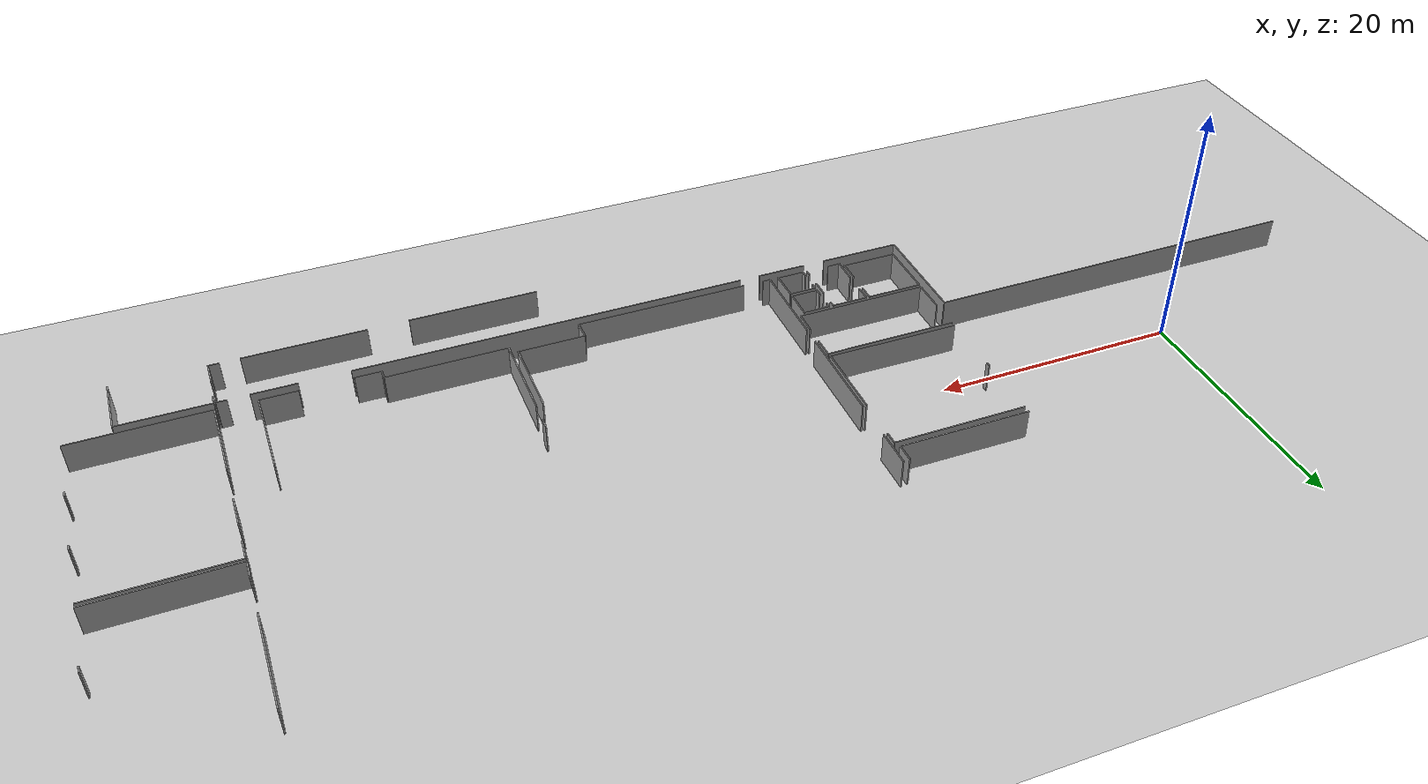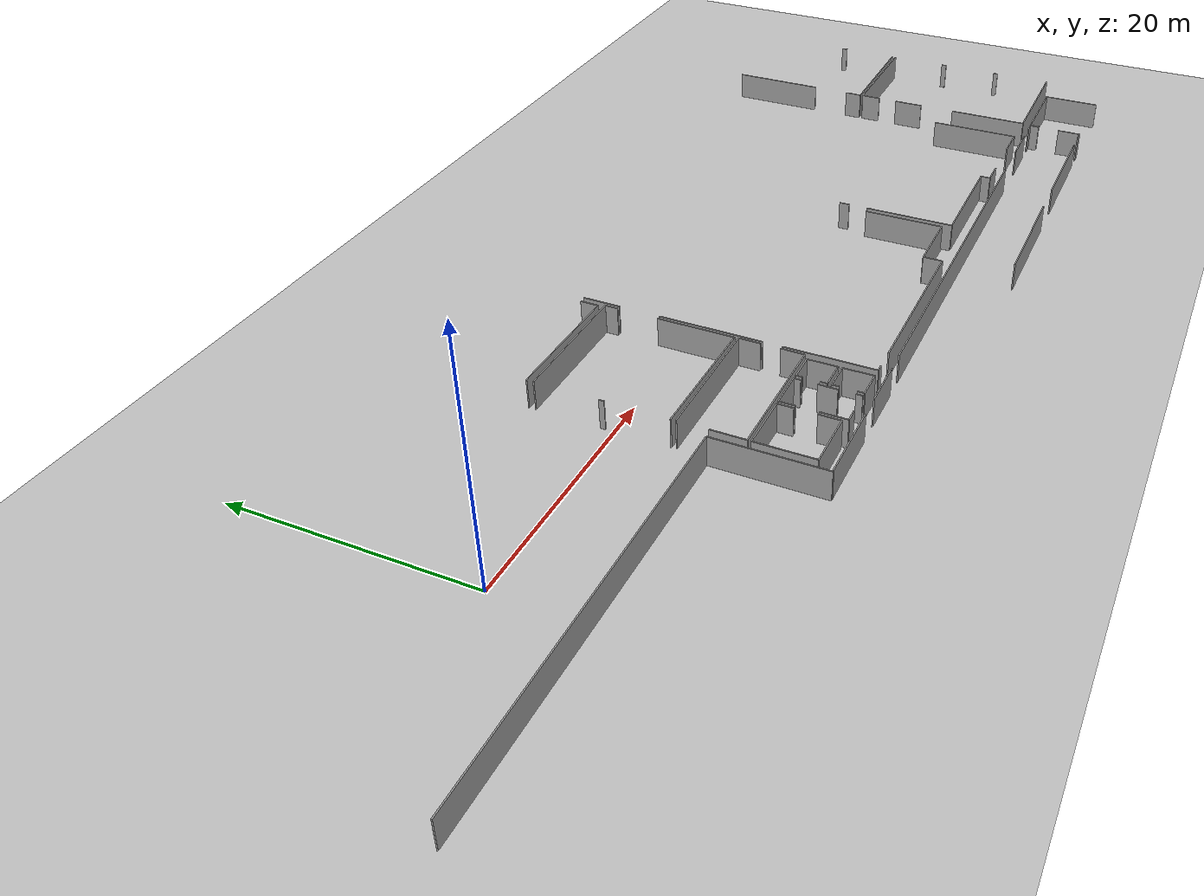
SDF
<sdf version="1.6">
 <world name="default">
  <model name="ground_plane">
   <static>1</static>
   <link name="link">
    <collision name="collision">
     <geometry><plane><normal>0 0 1</normal><size>100 100</size></plane></geometry>
     <surface><friction><ode><mu>100</mu><mu2>50</mu2></ode></friction></surface>
    </collision>
    <visual name="visual">
     <cast_shadows>0</cast_shadows>
     <geometry><plane><normal>0 0 1</normal><size>100 100</size></plane></geometry>
     <material>
      <script><uri>file://media/materials/scripts/gazebo.material</uri><name>Gazebo/Grey</name></script>
     </material>
    </visual>
   </link>
  </model>
  <model name="0510045904_A_40_1_102">
   <static>1</static>
   <link name="Wall_164">
    <collision name="Wall_164_Collision">
     <geometry><box><size>9.07131158988 0.1 2.5</size></box></geometry>
     <pose>4.53565579494 0 1.25 0 0 0</pose>
    </collision>
    <visual name="Wall_164_Visual">
     <pose>4.53565579494 0 1.25 0 0 0</pose>
     <geometry><box><size>9.07131158988 0.1 2.5</size></box></geometry>
     <material>
      <script><uri>file://media/materials/scripts/gazebo.material</uri><name>Gazebo/Grey</name></script>
      <ambient>1 1 1 1</ambient>
     </material>
    </visual>
    <pose>100.589333096 -78.9183287417 0 0 0 1.57079632679</pose>
   </link>
   <link name="Wall_165">
    <collision name="Wall_165_Collision">
     <geometry><box><size>32.435156855 0.1 2.5</size></box></geometry>
     <pose>16.2175784275 0 1.25 0 0 0</pose>
    </collision>
    <visual name="Wall_165_Visual">
     <pose>16.2175784275 0 1.25 0 0 0</pose>
     <geometry><box><size>32.435156855 0.1 2.5</size></box></geometry>
     <material>
      <script><uri>file://media/materials/scripts/gazebo.material</uri><name>Gazebo/Grey</name></script>
      <ambient>1 1 1 1</ambient>
     </material>
    </visual>
    <pose>100.589333096 -69.8470171519 0 0 0 3.14159265359</pose>
   </link>
   <link name="Wall_167">
    <collision name="Wall_167_Collision">
     <geometry><box><size>6.50297713509 0.1 2.5</size></box></geometry>
     <pose>3.25148856755 0 1.25 0 0 0</pose>
    </collision>
    <visual name="Wall_167_Visual">
     <pose>3.25148856755 0 1.25 0 0 0</pose>
     <geometry><box><size>6.50297713509 0.1 2.5</size></box></geometry>
     <material>
      <script><uri>file://media/materials/scripts/gazebo.material</uri><name>Gazebo/Grey</name></script>
      <ambient>1 1 1 1</ambient>
     </material>
    </visual>
    <pose>100.705371539 -78.8878591288 0 0 0 0.0</pose>
   </link>
   <link name="Wall_168">
    <collision name="Wall_168_Collision">
     <geometry><box><size>4.00675409753 0.1 2.5</size></box></geometry>
     <pose>2.00337704876 0 1.25 0 0 0</pose>
    </collision>
    <visual name="Wall_168_Visual">
     <pose>2.00337704876 0 1.25 0 0 0</pose>
     <geometry><box><size>4.00675409753 0.1 2.5</size></box></geometry>
     <material>
      <script><uri>file://media/materials/scripts/gazebo.material</uri><name>Gazebo/Grey</name></script>
      <ambient>1 1 1 1</ambient>
     </material>
    </visual>
    <pose>109.069788109 -78.8878591288 0 0 0 0.0</pose>
   </link>
   <link name="Wall_169">
    <collision name="Wall_169_Collision">
     <geometry><box><size>32.1962243071 0.1 2.5</size></box></geometry>
     <pose>16.0981121536 0 1.25 0 0 0</pose>
    </collision>
    <visual name="Wall_169_Visual">
     <pose>16.0981121536 0 1.25 0 0 0</pose>
     <geometry><box><size>32.1962243071 0.1 2.5</size></box></geometry>
     <material>
      <script><uri>file://media/materials/scripts/gazebo.material</uri><name>Gazebo/Grey</name></script>
      <ambient>1 1 1 1</ambient>
     </material>
    </visual>
    <pose>114.811278835 -78.8878591288 0 0 0 0.0</pose>
   </link>
   <link name="Wall_170">
    <collision name="Wall_170_Collision">
     <geometry><box><size>3.59312910229 0.1 2.5</size></box></geometry>
     <pose>1.79656455114 0 1.25 0 0 0</pose>
    </collision>
    <visual name="Wall_170_Visual">
     <pose>1.79656455114 0 1.25 0 0 0</pose>
     <geometry><box><size>3.59312910229 0.1 2.5</size></box></geometry>
     <material>
      <script><uri>file://media/materials/scripts/gazebo.material</uri><name>Gazebo/Grey</name></script>
      <ambient>1 1 1 1</ambient>
     </material>
    </visual>
    <pose>151.02974596 -78.8878591288 0 0 0 0.0</pose>
   </link>
   <link name="Wall_171">
    <collision name="Wall_171_Collision">
     <geometry><box><size>0.82775781736 0.1 2.5</size></box></geometry>
     <pose>0.41387890868 0 1.25 0 0 0</pose>
    </collision>
    <visual name="Wall_171_Visual">
     <pose>0.41387890868 0 1.25 0 0 0</pose>
     <geometry><box><size>0.82775781736 0.1 2.5</size></box></geometry>
     <material>
      <script><uri>file://media/materials/scripts/gazebo.material</uri><name>Gazebo/Grey</name></script>
      <ambient>1 1 1 1</ambient>
     </material>
    </visual>
    <pose>156.302004647 -78.8878591288 0 0 0 0.0</pose>
   </link>
   <link name="Wall_172">
    <collision name="Wall_172_Collision">
     <geometry><box><size>0.794749070042 0.1 2.5</size></box></geometry>
     <pose>0.397374535021 0 1.25 0 0 0</pose>
    </collision>
    <visual name="Wall_172_Visual">
     <pose>0.397374535021 0 1.25 0 0 0</pose>
     <geometry><box><size>0.794749070042 0.1 2.5</size></box></geometry>
     <material>
      <script><uri>file://media/materials/scripts/gazebo.material</uri><name>Gazebo/Grey</name></script>
      <ambient>1 1 1 1</ambient>
     </material>
    </visual>
    <pose>157.129762464 -78.8878591288 0 0 0 -1.57079632679</pose>
   </link>
   <link name="Wall_173">
    <collision name="Wall_173_Collision">
     <geometry><box><size>2.03130752726 0.1 2.5</size></box></geometry>
     <pose>1.01565376363 0 1.25 0 0 0</pose>
    </collision>
    <visual name="Wall_173_Visual">
     <pose>1.01565376363 0 1.25 0 0 0</pose>
     <geometry><box><size>2.03130752726 0.1 2.5</size></box></geometry>
     <material>
      <script><uri>file://media/materials/scripts/gazebo.material</uri><name>Gazebo/Grey</name></script>
      <ambient>1 1 1 1</ambient>
     </material>
    </visual>
    <pose>157.129762464 -81.6057486003 0 0 0 -1.57079632679</pose>
   </link>
   <link name="Wall_174">
    <collision name="Wall_174_Collision">
     <geometry><box><size>0.854418728655 0.1 2.5</size></box></geometry>
     <pose>0.427209364328 0 1.25 0 0 0</pose>
    </collision>
    <visual name="Wall_174_Visual">
     <pose>0.427209364328 0 1.25 0 0 0</pose>
     <geometry><box><size>0.854418728655 0.1 2.5</size></box></geometry>
     <material>
      <script><uri>file://media/materials/scripts/gazebo.material</uri><name>Gazebo/Grey</name></script>
      <ambient>1 1 1 1</ambient>
     </material>
    </visual>
    <pose>157.129762464 -83.6370561276 0 0 0 3.14159265359</pose>
   </link>
   <link name="Wall_175">
    <collision name="Wall_175_Collision">
     <geometry><box><size>9.8876433024 0.1 2.5</size></box></geometry>
     <pose>4.9438216512 0 1.25 0 0 0</pose>
    </collision>
    <visual name="Wall_175_Visual">
     <pose>4.9438216512 0 1.25 0 0 0</pose>
     <geometry><box><size>9.8876433024 0.1 2.5</size></box></geometry>
     <material>
      <script><uri>file://media/materials/scripts/gazebo.material</uri><name>Gazebo/Grey</name></script>
      <ambient>1 1 1 1</ambient>
     </material>
    </visual>
    <pose>154.695240393 -83.6370561276 0 0 0 3.14159265359</pose>
   </link>
   <link name="Wall_176">
    <collision name="Wall_176_Collision">
     <geometry><box><size>10.540454759 0.1 2.5</size></box></geometry>
     <pose>5.27022737949 0 1.25 0 0 0</pose>
    </collision>
    <visual name="Wall_176_Visual">
     <pose>5.27022737949 0 1.25 0 0 0</pose>
     <geometry><box><size>10.540454759 0.1 2.5</size></box></geometry>
     <material>
      <script><uri>file://media/materials/scripts/gazebo.material</uri><name>Gazebo/Grey</name></script>
      <ambient>1 1 1 1</ambient>
     </material>
    </visual>
    <pose>141.466857948 -83.6370561276 0 0 0 3.14159265359</pose>
   </link>
   <link name="Wall_181">
    <collision name="Wall_181_Collision">
     <geometry><box><size>2.17756166923 0.1 2.5</size></box></geometry>
     <pose>1.08878083461 0 1.25 0 0 0</pose>
    </collision>
    <visual name="Wall_181_Visual">
     <pose>1.08878083461 0 1.25 0 0 0</pose>
     <geometry><box><size>2.17756166923 0.1 2.5</size></box></geometry>
     <material>
      <script><uri>file://media/materials/scripts/gazebo.material</uri><name>Gazebo/Grey</name></script>
      <ambient>1 1 1 1</ambient>
     </material>
    </visual>
    <pose>106.163240951 -78.0593395711 0 0 0 1.57079632679</pose>
   </link>
   <link name="Wall_182">
    <collision name="Wall_182_Collision">
     <geometry><box><size>1.28759505884 0.1 2.5</size></box></geometry>
     <pose>0.643797529422 0 1.25 0 0 0</pose>
    </collision>
    <visual name="Wall_182_Visual">
     <pose>0.643797529422 0 1.25 0 0 0</pose>
     <geometry><box><size>1.28759505884 0.1 2.5</size></box></geometry>
     <material>
      <script><uri>file://media/materials/scripts/gazebo.material</uri><name>Gazebo/Grey</name></script>
      <ambient>1 1 1 1</ambient>
     </material>
    </visual>
    <pose>106.163240951 -74.1239351505 0 0 0 1.57079632679</pose>
   </link>
   <link name="Wall_183">
    <collision name="Wall_183_Collision">
     <geometry><box><size>2.97053334518 0.1 2.5</size></box></geometry>
     <pose>1.48526667259 0 1.25 0 0 0</pose>
    </collision>
    <visual name="Wall_183_Visual">
     <pose>1.48526667259 0 1.25 0 0 0</pose>
     <geometry><box><size>2.97053334518 0.1 2.5</size></box></geometry>
     <material>
      <script><uri>file://media/materials/scripts/gazebo.material</uri><name>Gazebo/Grey</name></script>
      <ambient>1 1 1 1</ambient>
     </material>
    </visual>
    <pose>106.163240951 -72.8363400917 0 0 0 0.0</pose>
   </link>
   <link name="Wall_184">
    <collision name="Wall_184_Collision">
     <geometry><box><size>0.54261302322 0.1 2.5</size></box></geometry>
     <pose>0.27130651161 0 1.25 0 0 0</pose>
    </collision>
    <visual name="Wall_184_Visual">
     <pose>0.27130651161 0 1.25 0 0 0</pose>
     <geometry><box><size>0.54261302322 0.1 2.5</size></box></geometry>
     <material>
      <script><uri>file://media/materials/scripts/gazebo.material</uri><name>Gazebo/Grey</name></script>
      <ambient>1 1 1 1</ambient>
     </material>
    </visual>
    <pose>109.133774296 -72.8363400917 0 0 0 -1.57079632679</pose>
   </link>
   <link name="Wall_185">
    <collision name="Wall_185_Collision">
     <geometry><box><size>1.55268069115 0.1 2.5</size></box></geometry>
     <pose>0.776340345576 0 1.25 0 0 0</pose>
    </collision>
    <visual name="Wall_185_Visual">
     <pose>0.776340345576 0 1.25 0 0 0</pose>
     <geometry><box><size>1.55268069115 0.1 2.5</size></box></geometry>
     <material>
      <script><uri>file://media/materials/scripts/gazebo.material</uri><name>Gazebo/Grey</name></script>
      <ambient>1 1 1 1</ambient>
     </material>
    </visual>
    <pose>109.133774296 -74.6492820597 0 0 0 -1.57079632679</pose>
   </link>
   <link name="Wall_186">
    <collision name="Wall_186_Collision">
     <geometry><box><size>0.508080795257 0.1 2.5</size></box></geometry>
     <pose>0.254040397628 0 1.25 0 0 0</pose>
    </collision>
    <visual name="Wall_186_Visual">
     <pose>0.254040397628 0 1.25 0 0 0</pose>
     <geometry><box><size>0.508080795257 0.1 2.5</size></box></geometry>
     <material>
      <script><uri>file://media/materials/scripts/gazebo.material</uri><name>Gazebo/Grey</name></script>
      <ambient>1 1 1 1</ambient>
     </material>
    </visual>
    <pose>109.133774296 -77.5367857098 0 0 0 -1.57079632679</pose>
   </link>
   <link name="Wall_187">
    <collision name="Wall_187_Collision">
     <geometry><box><size>1.03251349247 0.1 2.5</size></box></geometry>
     <pose>0.516256746237 0 1.25 0 0 0</pose>
    </collision>
    <visual name="Wall_187_Visual">
     <pose>0.516256746237 0 1.25 0 0 0</pose>
     <geometry><box><size>1.03251349247 0.1 2.5</size></box></geometry>
     <material>
      <script><uri>file://media/materials/scripts/gazebo.material</uri><name>Gazebo/Grey</name></script>
      <ambient>1 1 1 1</ambient>
     </material>
    </visual>
    <pose>107.195653002 -78.044866505 0 0 0 -3.12757488023</pose>
   </link>
   <link name="Wall_188">
    <collision name="Wall_188_Collision">
     <geometry><box><size>2.22174260794 0.1 2.5</size></box></geometry>
     <pose>1.11087130397 0 1.25 0 0 0</pose>
    </collision>
    <visual name="Wall_188_Visual">
     <pose>1.11087130397 0 1.25 0 0 0</pose>
     <geometry><box><size>2.22174260794 0.1 2.5</size></box></geometry>
     <material>
      <script><uri>file://media/materials/scripts/gazebo.material</uri><name>Gazebo/Grey</name></script>
      <ambient>1 1 1 1</ambient>
     </material>
    </visual>
    <pose>111.708964414 -75.2726395572 0 0 0 3.14159265359</pose>
   </link>
   <link name="Wall_189">
    <collision name="Wall_189_Collision">
     <geometry><box><size>0.580700039357 0.1 2.5</size></box></geometry>
     <pose>0.290350019678 0 1.25 0 0 0</pose>
    </collision>
    <visual name="Wall_189_Visual">
     <pose>0.290350019678 0 1.25 0 0 0</pose>
     <geometry><box><size>0.580700039357 0.1 2.5</size></box></geometry>
     <material>
      <script><uri>file://media/materials/scripts/gazebo.material</uri><name>Gazebo/Grey</name></script>
      <ambient>1 1 1 1</ambient>
     </material>
    </visual>
    <pose>109.487221806 -75.2726395572 0 0 0 1.57079632679</pose>
   </link>
   <link name="Wall_190">
    <collision name="Wall_190_Collision">
     <geometry><box><size>0.50604948773 0.1 2.5</size></box></geometry>
     <pose>0.253024743865 0 1.25 0 0 0</pose>
    </collision>
    <visual name="Wall_190_Visual">
     <pose>0.253024743865 0 1.25 0 0 0</pose>
     <geometry><box><size>0.50604948773 0.1 2.5</size></box></geometry>
     <material>
      <script><uri>file://media/materials/scripts/gazebo.material</uri><name>Gazebo/Grey</name></script>
      <ambient>1 1 1 1</ambient>
     </material>
    </visual>
    <pose>109.487221806 -73.3609252606 0 0 0 1.57079632679</pose>
   </link>
   <link name="Wall_191">
    <collision name="Wall_191_Collision">
     <geometry><box><size>2.22098086762 0.1 2.5</size></box></geometry>
     <pose>1.11049043381 0 1.25 0 0 0</pose>
    </collision>
    <visual name="Wall_191_Visual">
     <pose>1.11049043381 0 1.25 0 0 0</pose>
     <geometry><box><size>2.22098086762 0.1 2.5</size></box></geometry>
     <material>
      <script><uri>file://media/materials/scripts/gazebo.material</uri><name>Gazebo/Grey</name></script>
      <ambient>1 1 1 1</ambient>
     </material>
    </visual>
    <pose>109.487221806 -72.8548757728 0 0 0 0.0</pose>
   </link>
   <link name="Wall_192">
    <collision name="Wall_192_Collision">
     <geometry><box><size>2.41776390432 0.1 2.5</size></box></geometry>
     <pose>1.20888195216 0 1.25 0 0 0</pose>
    </collision>
    <visual name="Wall_192_Visual">
     <pose>1.20888195216 0 1.25 0 0 0</pose>
     <geometry><box><size>2.41776390432 0.1 2.5</size></box></geometry>
     <material>
      <script><uri>file://media/materials/scripts/gazebo.material</uri><name>Gazebo/Grey</name></script>
      <ambient>1 1 1 1</ambient>
     </material>
    </visual>
    <pose>111.708202674 -72.8548757728 0 0 0 -1.57048126694</pose>
   </link>
   <link name="Wall_193">
    <collision name="Wall_193_Collision">
     <geometry><box><size>2.26135310473 0.1 2.5</size></box></geometry>
     <pose>1.13067655236 0 1.25 0 0 0</pose>
    </collision>
    <visual name="Wall_193_Visual">
     <pose>1.13067655236 0 1.25 0 0 0</pose>
     <geometry><box><size>2.26135310473 0.1 2.5</size></box></geometry>
     <material>
      <script><uri>file://media/materials/scripts/gazebo.material</uri><name>Gazebo/Grey</name></script>
      <ambient>1 1 1 1</ambient>
     </material>
    </visual>
    <pose>111.742480988 -78.062132619 0 0 0 3.14159265359</pose>
   </link>
   <link name="Wall_194">
    <collision name="Wall_194_Collision">
     <geometry><box><size>0.538042581284 0.1 2.5</size></box></geometry>
     <pose>0.269021290642 0 1.25 0 0 0</pose>
    </collision>
    <visual name="Wall_194_Visual">
     <pose>0.269021290642 0 1.25 0 0 0</pose>
     <geometry><box><size>0.538042581284 0.1 2.5</size></box></geometry>
     <material>
      <script><uri>file://media/materials/scripts/gazebo.material</uri><name>Gazebo/Grey</name></script>
      <ambient>1 1 1 1</ambient>
     </material>
    </visual>
    <pose>109.481127884 -78.062132619 0 0 0 1.57079632679</pose>
   </link>
   <link name="Wall_195">
    <collision name="Wall_195_Collision">
     <geometry><box><size>0.542866936661 0.1 2.5</size></box></geometry>
     <pose>0.271433468331 0 1.25 0 0 0</pose>
    </collision>
    <visual name="Wall_195_Visual">
     <pose>0.271433468331 0 1.25 0 0 0</pose>
     <geometry><box><size>0.542866936661 0.1 2.5</size></box></geometry>
     <material>
      <script><uri>file://media/materials/scripts/gazebo.material</uri><name>Gazebo/Grey</name></script>
      <ambient>1 1 1 1</ambient>
     </material>
    </visual>
    <pose>109.481127884 -76.1438165729 0 0 0 1.57079632679</pose>
   </link>
   <link name="Wall_196">
    <collision name="Wall_196_Collision">
     <geometry><box><size>2.22783653053 0.1 2.5</size></box></geometry>
     <pose>1.11391826526 0 1.25 0 0 0</pose>
    </collision>
    <visual name="Wall_196_Visual">
     <pose>1.11391826526 0 1.25 0 0 0</pose>
     <geometry><box><size>2.22783653053 0.1 2.5</size></box></geometry>
     <material>
      <script><uri>file://media/materials/scripts/gazebo.material</uri><name>Gazebo/Grey</name></script>
      <ambient>1 1 1 1</ambient>
     </material>
    </visual>
    <pose>109.481127884 -75.6009496363 0 0 0 0.0</pose>
   </link>
   <link name="Wall_197">
    <collision name="Wall_197_Collision">
     <geometry><box><size>2.46141118775 0.1 2.5</size></box></geometry>
     <pose>1.23070559388 0 1.25 0 0 0</pose>
    </collision>
    <visual name="Wall_197_Visual">
     <pose>1.23070559388 0 1.25 0 0 0</pose>
     <geometry><box><size>2.46141118775 0.1 2.5</size></box></geometry>
     <material>
      <script><uri>file://media/materials/scripts/gazebo.material</uri><name>Gazebo/Grey</name></script>
      <ambient>1 1 1 1</ambient>
     </material>
    </visual>
    <pose>111.708964414 -75.6009496363 0 0 0 -1.55717909363</pose>
   </link>
   <link name="Wall_198">
    <collision name="Wall_198_Collision">
     <geometry><box><size>1.76749146216 0.1 2.5</size></box></geometry>
     <pose>0.88374573108 0 1.25 0 0 0</pose>
    </collision>
    <visual name="Wall_198_Visual">
     <pose>0.88374573108 0 1.25 0 0 0</pose>
     <geometry><box><size>1.76749146216 0.1 2.5</size></box></geometry>
     <material>
      <script><uri>file://media/materials/scripts/gazebo.material</uri><name>Gazebo/Grey</name></script>
      <ambient>1 1 1 1</ambient>
     </material>
    </visual>
    <pose>105.880635291 -77.6449528356 0 0 0 1.57079632679</pose>
   </link>
   <link name="Wall_199">
    <collision name="Wall_199_Collision">
     <geometry><box><size>1.28886462605 0.1 2.5</size></box></geometry>
     <pose>0.644432313024 0 1.25 0 0 0</pose>
    </collision>
    <visual name="Wall_199_Visual">
     <pose>0.644432313024 0 1.25 0 0 0</pose>
     <geometry><box><size>1.28886462605 0.1 2.5</size></box></geometry>
     <material>
      <script><uri>file://media/materials/scripts/gazebo.material</uri><name>Gazebo/Grey</name></script>
      <ambient>1 1 1 1</ambient>
     </material>
    </visual>
    <pose>105.880635291 -74.1150481801 0 0 0 1.57079632679</pose>
   </link>
   <link name="Wall_200">
    <collision name="Wall_200_Collision">
     <geometry><box><size>4.54835146698 0.1 2.5</size></box></geometry>
     <pose>2.27417573349 0 1.25 0 0 0</pose>
    </collision>
    <visual name="Wall_200_Visual">
     <pose>2.27417573349 0 1.25 0 0 0</pose>
     <geometry><box><size>4.54835146698 0.1 2.5</size></box></geometry>
     <material>
      <script><uri>file://media/materials/scripts/gazebo.material</uri><name>Gazebo/Grey</name></script>
      <ambient>1 1 1 1</ambient>
     </material>
    </visual>
    <pose>105.880635291 -72.826183554 0 0 0 3.14159265359</pose>
   </link>
   <link name="Wall_201">
    <collision name="Wall_201_Collision">
     <geometry><box><size>4.81876928155 0.1 2.5</size></box></geometry>
     <pose>2.40938464078 0 1.25 0 0 0</pose>
    </collision>
    <visual name="Wall_201_Visual">
     <pose>2.40938464078 0 1.25 0 0 0</pose>
     <geometry><box><size>4.81876928155 0.1 2.5</size></box></geometry>
     <material>
      <script><uri>file://media/materials/scripts/gazebo.material</uri><name>Gazebo/Grey</name></script>
      <ambient>1 1 1 1</ambient>
     </material>
    </visual>
    <pose>101.332283824 -72.826183554 0 0 0 -1.57079632679</pose>
   </link>
   <link name="Wall_202">
    <collision name="Wall_202_Collision">
     <geometry><box><size>4.54835146698 0.1 2.5</size></box></geometry>
     <pose>2.27417573349 0 1.25 0 0 0</pose>
    </collision>
    <visual name="Wall_202_Visual">
     <pose>2.27417573349 0 1.25 0 0 0</pose>
     <geometry><box><size>4.54835146698 0.1 2.5</size></box></geometry>
     <material>
      <script><uri>file://media/materials/scripts/gazebo.material</uri><name>Gazebo/Grey</name></script>
      <ambient>1 1 1 1</ambient>
     </material>
    </visual>
    <pose>101.332283824 -77.6449528356 0 0 0 0.0</pose>
   </link>
   <link name="Wall_228">
    <collision name="Wall_228_Collision">
     <geometry><box><size>5.43984155801 0.1 2.5</size></box></geometry>
     <pose>2.71992077901 0 1.25 0 0 0</pose>
    </collision>
    <visual name="Wall_228_Visual">
     <pose>2.71992077901 0 1.25 0 0 0</pose>
     <geometry><box><size>5.43984155801 0.1 2.5</size></box></geometry>
     <material>
      <script><uri>file://media/materials/scripts/gazebo.material</uri><name>Gazebo/Grey</name></script>
      <ambient>1 1 1 1</ambient>
     </material>
    </visual>
    <pose>134.474843526 -76.4754275268 0 0 0 3.14159265359</pose>
   </link>
   <link name="Wall_229">
    <collision name="Wall_229_Collision">
     <geometry><box><size>1.61184252288 0.1 2.5</size></box></geometry>
     <pose>0.805921261442 0 1.25 0 0 0</pose>
    </collision>
    <visual name="Wall_229_Visual">
     <pose>0.805921261442 0 1.25 0 0 0</pose>
     <geometry><box><size>1.61184252288 0.1 2.5</size></box></geometry>
     <material>
      <script><uri>file://media/materials/scripts/gazebo.material</uri><name>Gazebo/Grey</name></script>
      <ambient>1 1 1 1</ambient>
     </material>
    </visual>
    <pose>129.035001968 -76.4754275268 0 0 0 -1.57079632679</pose>
   </link>
   <link name="Wall_230">
    <collision name="Wall_230_Collision">
     <geometry><box><size>14.1983317887 0.1 2.5</size></box></geometry>
     <pose>7.09916589435 0 1.25 0 0 0</pose>
    </collision>
    <visual name="Wall_230_Visual">
     <pose>7.09916589435 0 1.25 0 0 0</pose>
     <geometry><box><size>14.1983317887 0.1 2.5</size></box></geometry>
     <material>
      <script><uri>file://media/materials/scripts/gazebo.material</uri><name>Gazebo/Grey</name></script>
      <ambient>1 1 1 1</ambient>
     </material>
    </visual>
    <pose>129.035001968 -78.0872700496 0 0 0 3.14159265359</pose>
   </link>
   <link name="Wall_231">
    <collision name="Wall_231_Collision">
     <geometry><box><size>0.63478360227 0.1 2.5</size></box></geometry>
     <pose>0.317391801135 0 1.25 0 0 0</pose>
    </collision>
    <visual name="Wall_231_Visual">
     <pose>0.317391801135 0 1.25 0 0 0</pose>
     <geometry><box><size>0.63478360227 0.1 2.5</size></box></geometry>
     <material>
      <script><uri>file://media/materials/scripts/gazebo.material</uri><name>Gazebo/Grey</name></script>
      <ambient>1 1 1 1</ambient>
     </material>
    </visual>
    <pose>113.110058781 -78.0872700496 0 0 0 3.14159265359</pose>
   </link>
   <link name="Wall_232">
    <collision name="Wall_232_Collision">
     <geometry><box><size>7.45058209656 0.1 2.5</size></box></geometry>
     <pose>3.72529104828 0 1.25 0 0 0</pose>
    </collision>
    <visual name="Wall_232_Visual">
     <pose>3.72529104828 0 1.25 0 0 0</pose>
     <geometry><box><size>7.45058209656 0.1 2.5</size></box></geometry>
     <material>
      <script><uri>file://media/materials/scripts/gazebo.material</uri><name>Gazebo/Grey</name></script>
      <ambient>1 1 1 1</ambient>
     </material>
    </visual>
    <pose>112.475275179 -78.0872700496 0 0 0 1.57079632679</pose>
   </link>
   <link name="Wall_233">
    <collision name="Wall_233_Collision">
     <geometry><box><size>8.55408991075 0.1 2.5</size></box></geometry>
     <pose>4.27704495537 0 1.25 0 0 0</pose>
    </collision>
    <visual name="Wall_233_Visual">
     <pose>4.27704495537 0 1.25 0 0 0</pose>
     <geometry><box><size>8.55408991075 0.1 2.5</size></box></geometry>
     <material>
      <script><uri>file://media/materials/scripts/gazebo.material</uri><name>Gazebo/Grey</name></script>
      <ambient>1 1 1 1</ambient>
     </material>
    </visual>
    <pose>112.475275179 -69.0616628791 0 0 0 1.57079632679</pose>
   </link>
   <link name="Wall_234">
    <collision name="Wall_234_Collision">
     <geometry><box><size>3.15030406135 0.1 2.5</size></box></geometry>
     <pose>1.57515203067 0 1.25 0 0 0</pose>
    </collision>
    <visual name="Wall_234_Visual">
     <pose>1.57515203067 0 1.25 0 0 0</pose>
     <geometry><box><size>3.15030406135 0.1 2.5</size></box></geometry>
     <material>
      <script><uri>file://media/materials/scripts/gazebo.material</uri><name>Gazebo/Grey</name></script>
      <ambient>1 1 1 1</ambient>
     </material>
    </visual>
    <pose>112.475275179 -57.0670458441 0 0 0 1.57079632679</pose>
   </link>
   <link name="Wall_239">
    <collision name="Wall_239_Collision">
     <geometry><box><size>6.77822936835 0.1 2.5</size></box></geometry>
     <pose>3.38911468418 0 1.25 0 0 0</pose>
    </collision>
    <visual name="Wall_239_Visual">
     <pose>3.38911468418 0 1.25 0 0 0</pose>
     <geometry><box><size>6.77822936835 0.1 2.5</size></box></geometry>
     <material>
      <script><uri>file://media/materials/scripts/gazebo.material</uri><name>Gazebo/Grey</name></script>
      <ambient>1 1 1 1</ambient>
     </material>
    </visual>
    <pose>134.463163508 -69.6972082217 0 0 0 -1.56907315937</pose>
   </link>
   <link name="Wall_245">
    <collision name="Wall_245_Collision">
     <geometry><box><size>1.52348064545 0.1 2.5</size></box></geometry>
     <pose>0.761740322724 0 1.25 0 0 0</pose>
    </collision>
    <visual name="Wall_245_Visual">
     <pose>0.761740322724 0 1.25 0 0 0</pose>
     <geometry><box><size>1.52348064545 0.1 2.5</size></box></geometry>
     <material>
      <script><uri>file://media/materials/scripts/gazebo.material</uri><name>Gazebo/Grey</name></script>
      <ambient>1 1 1 1</ambient>
     </material>
    </visual>
    <pose>111.933169982 -55.4836416266 0 0 0 1.57079632679</pose>
   </link>
   <link name="Wall_251">
    <collision name="Wall_251_Collision">
     <geometry><box><size>10.6511164505 0.1 2.5</size></box></geometry>
     <pose>5.32555822525 0 1.25 0 0 0</pose>
    </collision>
    <visual name="Wall_251_Visual">
     <pose>5.32555822525 0 1.25 0 0 0</pose>
     <geometry><box><size>10.6511164505 0.1 2.5</size></box></geometry>
     <material>
      <script><uri>file://media/materials/scripts/gazebo.material</uri><name>Gazebo/Grey</name></script>
      <ambient>1 1 1 1</ambient>
     </material>
    </visual>
    <pose>101.282262877 -55.4168623916 0 0 0 -0.0062697345186</pose>
   </link>
   <link name="Wall_252">
    <collision name="Wall_252_Collision">
     <geometry><box><size>6.4024274125 0.1 2.5</size></box></geometry>
     <pose>3.20121370625 0 1.25 0 0 0</pose>
    </collision>
    <visual name="Wall_252_Visual">
     <pose>3.20121370625 0 1.25 0 0 0</pose>
     <geometry><box><size>6.4024274125 0.1 2.5</size></box></geometry>
     <material>
      <script><uri>file://media/materials/scripts/gazebo.material</uri><name>Gazebo/Grey</name></script>
      <ambient>1 1 1 1</ambient>
     </material>
    </visual>
    <pose>112.159152945 -66.9100003809 0 0 0 1.57079632679</pose>
   </link>
   <link name="Wall_253">
    <collision name="Wall_253_Collision">
     <geometry><box><size>1.0750695088 0.1 2.5</size></box></geometry>
     <pose>0.537534754402 0 1.25 0 0 0</pose>
    </collision>
    <visual name="Wall_253_Visual">
     <pose>0.537534754402 0 1.25 0 0 0</pose>
     <geometry><box><size>1.0750695088 0.1 2.5</size></box></geometry>
     <material>
      <script><uri>file://media/materials/scripts/gazebo.material</uri><name>Gazebo/Grey</name></script>
      <ambient>1 1 1 1</ambient>
     </material>
    </visual>
    <pose>112.159152945 -57.060698008 0 0 0 1.57079632679</pose>
   </link>
   <link name="Wall_254">
    <collision name="Wall_254_Collision">
     <geometry><box><size>10.8575926467 0.1 2.5</size></box></geometry>
     <pose>5.42879632333 0 1.25 0 0 0</pose>
    </collision>
    <visual name="Wall_254_Visual">
     <pose>5.42879632333 0 1.25 0 0 0</pose>
     <geometry><box><size>10.8575926467 0.1 2.5</size></box></geometry>
     <material>
      <script><uri>file://media/materials/scripts/gazebo.material</uri><name>Gazebo/Grey</name></script>
      <ambient>1 1 1 1</ambient>
     </material>
    </visual>
    <pose>112.159152945 -55.9856284992 0 0 0 3.14159265359</pose>
   </link>
   <link name="Wall_255">
    <collision name="Wall_255_Collision">
     <geometry><box><size>0.428098061371 0.1 2.5</size></box></geometry>
     <pose>0.214049030685 0 1.25 0 0 0</pose>
    </collision>
    <visual name="Wall_255_Visual">
     <pose>0.214049030685 0 1.25 0 0 0</pose>
     <geometry><box><size>0.428098061371 0.1 2.5</size></box></geometry>
     <material>
      <script><uri>file://media/materials/scripts/gazebo.material</uri><name>Gazebo/Grey</name></script>
      <ambient>1 1 1 1</ambient>
     </material>
    </visual>
    <pose>101.301560298 -61.2556019653 0 0 0 -1.57079632679</pose>
   </link>
   <link name="Wall_256">
    <collision name="Wall_256_Collision">
     <geometry><box><size>10.857941939 0.1 2.5</size></box></geometry>
     <pose>5.42897096952 0 1.25 0 0 0</pose>
    </collision>
    <visual name="Wall_256_Visual">
     <pose>5.42897096952 0 1.25 0 0 0</pose>
     <geometry><box><size>10.857941939 0.1 2.5</size></box></geometry>
     <material>
      <script><uri>file://media/materials/scripts/gazebo.material</uri><name>Gazebo/Grey</name></script>
      <ambient>1 1 1 1</ambient>
     </material>
    </visual>
    <pose>101.301560298 -66.8229080706 0 0 0 -0.00802115581682</pose>
   </link>
   <link name="Wall_257">
    <collision name="Wall_257_Collision">
     <geometry><box><size>10.8184899768 0.1 2.5</size></box></geometry>
     <pose>5.40924498838 0 1.25 0 0 0</pose>
    </collision>
    <visual name="Wall_257_Visual">
     <pose>5.40924498838 0 1.25 0 0 0</pose>
     <geometry><box><size>10.8184899768 0.1 2.5</size></box></geometry>
     <material>
      <script><uri>file://media/materials/scripts/gazebo.material</uri><name>Gazebo/Grey</name></script>
      <ambient>1 1 1 1</ambient>
     </material>
    </visual>
    <pose>112.175149492 -72.5288509147 0 0 0 3.14159265359</pose>
   </link>
   <link name="Wall_258">
    <collision name="Wall_258_Collision">
     <geometry><box><size>2.83799052903 0.1 2.5</size></box></geometry>
     <pose>1.41899526451 0 1.25 0 0 0</pose>
    </collision>
    <visual name="Wall_258_Visual">
     <pose>1.41899526451 0 1.25 0 0 0</pose>
     <geometry><box><size>2.83799052903 0.1 2.5</size></box></geometry>
     <material>
      <script><uri>file://media/materials/scripts/gazebo.material</uri><name>Gazebo/Grey</name></script>
      <ambient>1 1 1 1</ambient>
     </material>
    </visual>
    <pose>101.356659515 -72.5288509147 0 0 0 1.57079632679</pose>
   </link>
   <link name="Wall_259">
    <collision name="Wall_259_Collision">
     <geometry><box><size>10.8517526375 0.1 2.5</size></box></geometry>
     <pose>5.42587631876 0 1.25 0 0 0</pose>
    </collision>
    <visual name="Wall_259_Visual">
     <pose>5.42587631876 0 1.25 0 0 0</pose>
     <geometry><box><size>10.8517526375 0.1 2.5</size></box></geometry>
     <material>
      <script><uri>file://media/materials/scripts/gazebo.material</uri><name>Gazebo/Grey</name></script>
      <ambient>1 1 1 1</ambient>
     </material>
    </visual>
    <pose>101.356659515 -67.2197747788 0 0 0 0.0</pose>
   </link>
   <link name="Wall_260">
    <collision name="Wall_260_Collision">
     <geometry><box><size>1.78653497023 0.1 2.5</size></box></geometry>
     <pose>0.893267485114 0 1.25 0 0 0</pose>
    </collision>
    <visual name="Wall_260_Visual">
     <pose>0.893267485114 0 1.25 0 0 0</pose>
     <geometry><box><size>1.78653497023 0.1 2.5</size></box></geometry>
     <material>
      <script><uri>file://media/materials/scripts/gazebo.material</uri><name>Gazebo/Grey</name></script>
      <ambient>1 1 1 1</ambient>
     </material>
    </visual>
    <pose>112.208412152 -67.2197747788 0 0 0 -1.57079632679</pose>
   </link>
   <link name="Wall_261">
    <collision name="Wall_261_Collision">
     <geometry><box><size>1.93028267696 0.1 2.5</size></box></geometry>
     <pose>0.96514133848 0 1.25 0 0 0</pose>
    </collision>
    <visual name="Wall_261_Visual">
     <pose>0.96514133848 0 1.25 0 0 0</pose>
     <geometry><box><size>1.93028267696 0.1 2.5</size></box></geometry>
     <material>
      <script><uri>file://media/materials/scripts/gazebo.material</uri><name>Gazebo/Grey</name></script>
      <ambient>1 1 1 1</ambient>
     </material>
    </visual>
    <pose>112.208412152 -70.5988548504 0 0 0 -1.5880291951</pose>
   </link>
   <link name="Wall_299">
    <collision name="Wall_299_Collision">
     <geometry><box><size>1.51840237663 0.1 2.5</size></box></geometry>
     <pose>0.759201188315 0 1.25 0 0 0</pose>
    </collision>
    <visual name="Wall_299_Visual">
     <pose>0.759201188315 0 1.25 0 0 0</pose>
     <geometry><box><size>1.51840237663 0.1 2.5</size></box></geometry>
     <material>
      <script><uri>file://media/materials/scripts/gazebo.material</uri><name>Gazebo/Grey</name></script>
      <ambient>1 1 1 1</ambient>
     </material>
    </visual>
    <pose>157.304962738 -61.3498038519 0 0 0 1.57079632679</pose>
   </link>
   <link name="Wall_300">
    <collision name="Wall_300_Collision">
     <geometry><box><size>8.26107379994 0.1 2.5</size></box></geometry>
     <pose>4.13053689997 0 1.25 0 0 0</pose>
    </collision>
    <visual name="Wall_300_Visual">
     <pose>4.13053689997 0 1.25 0 0 0</pose>
     <geometry><box><size>8.26107379994 0.1 2.5</size></box></geometry>
     <material>
      <script><uri>file://media/materials/scripts/gazebo.material</uri><name>Gazebo/Grey</name></script>
      <ambient>1 1 1 1</ambient>
     </material>
    </visual>
    <pose>157.304962738 -56.5025962649 0 0 0 1.57079632679</pose>
   </link>
   <link name="Wall_304">
    <collision name="Wall_304_Collision">
     <geometry><box><size>0.522553861389 0.1 2.5</size></box></geometry>
     <pose>0.261276930694 0 1.25 0 0 0</pose>
    </collision>
    <visual name="Wall_304_Visual">
     <pose>0.261276930694 0 1.25 0 0 0</pose>
     <geometry><box><size>0.522553861389 0.1 2.5</size></box></geometry>
     <material>
      <script><uri>file://media/materials/scripts/gazebo.material</uri><name>Gazebo/Grey</name></script>
      <ambient>1 1 1 1</ambient>
     </material>
    </visual>
    <pose>168.183884114 -55.5717495906 0 0 0 -1.57079632679</pose>
   </link>
   <link name="Wall_305">
    <collision name="Wall_305_Collision">
     <geometry><box><size>10.8791637479 0.1 2.5</size></box></geometry>
     <pose>5.43958187394 0 1.25 0 0 0</pose>
    </collision>
    <visual name="Wall_305_Visual">
     <pose>5.43958187394 0 1.25 0 0 0</pose>
     <geometry><box><size>10.8791637479 0.1 2.5</size></box></geometry>
     <material>
      <script><uri>file://media/materials/scripts/gazebo.material</uri><name>Gazebo/Grey</name></script>
      <ambient>1 1 1 1</ambient>
     </material>
    </visual>
    <pose>168.183884114 -61.2771846078 0 0 0 -3.13491752809</pose>
   </link>
   <link name="Wall_306">
    <collision name="Wall_306_Collision">
     <geometry><box><size>7.10957634542 0.1 2.5</size></box></geometry>
     <pose>3.55478817271 0 1.25 0 0 0</pose>
    </collision>
    <visual name="Wall_306_Visual">
     <pose>3.55478817271 0 1.25 0 0 0</pose>
     <geometry><box><size>7.10957634542 0.1 2.5</size></box></geometry>
     <material>
      <script><uri>file://media/materials/scripts/gazebo.material</uri><name>Gazebo/Grey</name></script>
      <ambient>1 1 1 1</ambient>
     </material>
    </visual>
    <pose>157.328576688 -78.0928561453 0 0 0 1.57079632679</pose>
   </link>
   <link name="Wall_307">
    <collision name="Wall_307_Collision">
     <geometry><box><size>2.64222326609 0.1 2.5</size></box></geometry>
     <pose>1.32111163304 0 1.25 0 0 0</pose>
    </collision>
    <visual name="Wall_307_Visual">
     <pose>1.32111163304 0 1.25 0 0 0</pose>
     <geometry><box><size>2.64222326609 0.1 2.5</size></box></geometry>
     <material>
      <script><uri>file://media/materials/scripts/gazebo.material</uri><name>Gazebo/Grey</name></script>
      <ambient>1 1 1 1</ambient>
     </material>
    </visual>
    <pose>157.328576688 -67.7664504171 0 0 0 1.57079632679</pose>
   </link>
   <link name="Wall_308">
    <collision name="Wall_308_Collision">
     <geometry><box><size>1.7565731842 0.1 2.5</size></box></geometry>
     <pose>0.878286592101 0 1.25 0 0 0</pose>
    </collision>
    <visual name="Wall_308_Visual">
     <pose>0.878286592101 0 1.25 0 0 0</pose>
     <geometry><box><size>1.7565731842 0.1 2.5</size></box></geometry>
     <material>
      <script><uri>file://media/materials/scripts/gazebo.material</uri><name>Gazebo/Grey</name></script>
      <ambient>1 1 1 1</ambient>
     </material>
    </visual>
    <pose>157.328576688 -63.3821270329 0 0 0 1.57079632679</pose>
   </link>
   <link name="Wall_309">
    <collision name="Wall_309_Collision">
     <geometry><box><size>10.8393108789 0.1 2.5</size></box></geometry>
     <pose>5.41965543946 0 1.25 0 0 0</pose>
    </collision>
    <visual name="Wall_309_Visual">
     <pose>5.41965543946 0 1.25 0 0 0</pose>
     <geometry><box><size>10.8393108789 0.1 2.5</size></box></geometry>
     <material>
      <script><uri>file://media/materials/scripts/gazebo.material</uri><name>Gazebo/Grey</name></script>
      <ambient>1 1 1 1</ambient>
     </material>
    </visual>
    <pose>157.328576688 -61.6255538487 0 0 0 0.0</pose>
   </link>
   <link name="Wall_310">
    <collision name="Wall_310_Collision">
     <geometry><box><size>0.479134662993 0.1 2.5</size></box></geometry>
     <pose>0.239567331497 0 1.25 0 0 0</pose>
    </collision>
    <visual name="Wall_310_Visual">
     <pose>0.239567331497 0 1.25 0 0 0</pose>
     <geometry><box><size>0.479134662993 0.1 2.5</size></box></geometry>
     <material>
      <script><uri>file://media/materials/scripts/gazebo.material</uri><name>Gazebo/Grey</name></script>
      <ambient>1 1 1 1</ambient>
     </material>
    </visual>
    <pose>168.167887567 -66.8081810911 0 0 0 -1.57079632679</pose>
   </link>
   <link name="Wall_311">
    <collision name="Wall_311_Collision">
     <geometry><box><size>0.421242398466 0.1 2.5</size></box></geometry>
     <pose>0.210621199233 0 1.25 0 0 0</pose>
    </collision>
    <visual name="Wall_311_Visual">
     <pose>0.210621199233 0 1.25 0 0 0</pose>
     <geometry><box><size>0.421242398466 0.1 2.5</size></box></geometry>
     <material>
      <script><uri>file://media/materials/scripts/gazebo.material</uri><name>Gazebo/Grey</name></script>
      <ambient>1 1 1 1</ambient>
     </material>
    </visual>
    <pose>168.167887567 -72.4409968642 0 0 0 -1.57079632679</pose>
   </link>
   <link name="Wall_312">
    <collision name="Wall_312_Collision">
     <geometry><box><size>10.8394908515 0.1 2.5</size></box></geometry>
     <pose>5.41974542575 0 1.25 0 0 0</pose>
    </collision>
    <visual name="Wall_312_Visual">
     <pose>5.41974542575 0 1.25 0 0 0</pose>
     <geometry><box><size>10.8394908515 0.1 2.5</size></box></geometry>
     <material>
      <script><uri>file://media/materials/scripts/gazebo.material</uri><name>Gazebo/Grey</name></script>
      <ambient>1 1 1 1</ambient>
     </material>
    </visual>
    <pose>168.167887567 -78.0303934389 0 0 0 -3.13583010874</pose>
   </link>
   <link name="Wall_313">
    <collision name="Wall_313_Collision">
     <geometry><box><size>7.62121192885 0.1 2.5</size></box></geometry>
     <pose>3.81060596443 0 1.25 0 0 0</pose>
    </collision>
    <visual name="Wall_313_Visual">
     <pose>3.81060596443 0 1.25 0 0 0</pose>
     <geometry><box><size>7.62121192885 0.1 2.5</size></box></geometry>
     <material>
      <script><uri>file://media/materials/scripts/gazebo.material</uri><name>Gazebo/Grey</name></script>
      <ambient>1 1 1 1</ambient>
     </material>
    </visual>
    <pose>135.025327866 -77.2054286694 0 0 0 1.57079632679</pose>
   </link>
   <link name="Wall_314">
    <collision name="Wall_314_Collision">
     <geometry><box><size>0.883110947478 0.1 2.5</size></box></geometry>
     <pose>0.441555473739 0 1.25 0 0 0</pose>
    </collision>
    <visual name="Wall_314_Visual">
     <pose>0.441555473739 0 1.25 0 0 0</pose>
     <geometry><box><size>0.883110947478 0.1 2.5</size></box></geometry>
     <material>
      <script><uri>file://media/materials/scripts/gazebo.material</uri><name>Gazebo/Grey</name></script>
      <ambient>1 1 1 1</ambient>
     </material>
    </visual>
    <pose>135.025327866 -67.9584089784 0 0 0 1.57079632679</pose>
   </link>
   <link name="Wall_315">
    <collision name="Wall_315_Collision">
     <geometry><box><size>7.8251044219 0.1 2.5</size></box></geometry>
     <pose>3.91255221095 0 1.25 0 0 0</pose>
    </collision>
    <visual name="Wall_315_Visual">
     <pose>3.91255221095 0 1.25 0 0 0</pose>
     <geometry><box><size>7.8251044219 0.1 2.5</size></box></geometry>
     <material>
      <script><uri>file://media/materials/scripts/gazebo.material</uri><name>Gazebo/Grey</name></script>
      <ambient>1 1 1 1</ambient>
     </material>
    </visual>
    <pose>154.119364709 -70.1763428847 0 0 0 -1.57079632679</pose>
   </link>
   <link name="Wall_316">
    <collision name="Wall_316_Collision">
     <geometry><box><size>2.98043596938 0.1 2.5</size></box></geometry>
     <pose>1.49021798469 0 1.25 0 0 0</pose>
    </collision>
    <visual name="Wall_316_Visual">
     <pose>1.49021798469 0 1.25 0 0 0</pose>
     <geometry><box><size>2.98043596938 0.1 2.5</size></box></geometry>
     <material>
      <script><uri>file://media/materials/scripts/gazebo.material</uri><name>Gazebo/Grey</name></script>
      <ambient>1 1 1 1</ambient>
     </material>
    </visual>
    <pose>154.119364709 -78.0014473066 0 0 0 3.14159265359</pose>
   </link>
   <link name="Wall_317">
    <collision name="Wall_317_Collision">
     <geometry><box><size>2.1196694047 0.1 2.5</size></box></geometry>
     <pose>1.05983470235 0 1.25 0 0 0</pose>
    </collision>
    <visual name="Wall_317_Visual">
     <pose>1.05983470235 0 1.25 0 0 0</pose>
     <geometry><box><size>2.1196694047 0.1 2.5</size></box></geometry>
     <material>
      <script><uri>file://media/materials/scripts/gazebo.material</uri><name>Gazebo/Grey</name></script>
      <ambient>1 1 1 1</ambient>
     </material>
    </visual>
    <pose>146.951134358 -78.0014473066 0 0 0 3.14159265359</pose>
   </link>
   <link name="Wall_318">
    <collision name="Wall_318_Collision">
     <geometry><box><size>0.81379257811 0.1 2.5</size></box></geometry>
     <pose>0.406896289055 0 1.25 0 0 0</pose>
    </collision>
    <visual name="Wall_318_Visual">
     <pose>0.406896289055 0 1.25 0 0 0</pose>
     <geometry><box><size>0.81379257811 0.1 2.5</size></box></geometry>
     <material>
      <script><uri>file://media/materials/scripts/gazebo.material</uri><name>Gazebo/Grey</name></script>
      <ambient>1 1 1 1</ambient>
     </material>
    </visual>
    <pose>144.831464954 -78.0014473066 0 0 0 1.57079632679</pose>
   </link>
   <link name="Wall_319">
    <collision name="Wall_319_Collision">
     <geometry><box><size>9.80615319578 0.1 2.5</size></box></geometry>
     <pose>4.90307659789 0 1.25 0 0 0</pose>
    </collision>
    <visual name="Wall_319_Visual">
     <pose>4.90307659789 0 1.25 0 0 0</pose>
     <geometry><box><size>9.80615319578 0.1 2.5</size></box></geometry>
     <material>
      <script><uri>file://media/materials/scripts/gazebo.material</uri><name>Gazebo/Grey</name></script>
      <ambient>1 1 1 1</ambient>
     </material>
    </visual>
    <pose>144.831464954 -77.1876547285 0 0 0 -3.13978012321</pose>
   </link>
   <link name="Wall_576">
    <collision name="Wall_576_Collision">
     <geometry><box><size>0.837914354996 0.1 2.5</size></box></geometry>
     <pose>0.418957177498 0 1.25 0 0 0</pose>
    </collision>
    <visual name="Wall_576_Visual">
     <pose>0.418957177498 0 1.25 0 0 0</pose>
     <geometry><box><size>0.837914354996 0.1 2.5</size></box></geometry>
     <material>
      <script><uri>file://media/materials/scripts/gazebo.material</uri><name>Gazebo/Grey</name></script>
      <ambient>1 1 1 1</ambient>
     </material>
    </visual>
    <pose>157.26890703 -79.7013977935 0 0 0 1.57079632679</pose>
   </link>
   <link name="Wall_577">
    <collision name="Wall_577_Collision">
     <geometry><box><size>7.2484669976 0.1 2.5</size></box></geometry>
     <pose>3.6242334988 0 1.25 0 0 0</pose>
    </collision>
    <visual name="Wall_577_Visual">
     <pose>3.6242334988 0 1.25 0 0 0</pose>
     <geometry><box><size>7.2484669976 0.1 2.5</size></box></geometry>
     <material>
      <script><uri>file://media/materials/scripts/gazebo.material</uri><name>Gazebo/Grey</name></script>
      <ambient>1 1 1 1</ambient>
     </material>
    </visual>
    <pose>157.26890703 -78.8634834385 0 0 0 0.0</pose>
   </link>
   <link name="Wall_578">
    <collision name="Wall_578_Collision">
     <geometry><box><size>4.99955565148 0.1 2.5</size></box></geometry>
     <pose>2.49977782574 0 1.25 0 0 0</pose>
    </collision>
    <visual name="Wall_578_Visual">
     <pose>2.49977782574 0 1.25 0 0 0</pose>
     <geometry><box><size>4.99955565148 0.1 2.5</size></box></geometry>
     <material>
      <script><uri>file://media/materials/scripts/gazebo.material</uri><name>Gazebo/Grey</name></script>
      <ambient>1 1 1 1</ambient>
     </material>
    </visual>
    <pose>164.517374027 -78.8634834385 0 0 0 -1.57079632679</pose>
   </link>
   <pose>-84.3 62.4479902751 0 0 0 0</pose>
  </model>
 </world>
</sdf>
